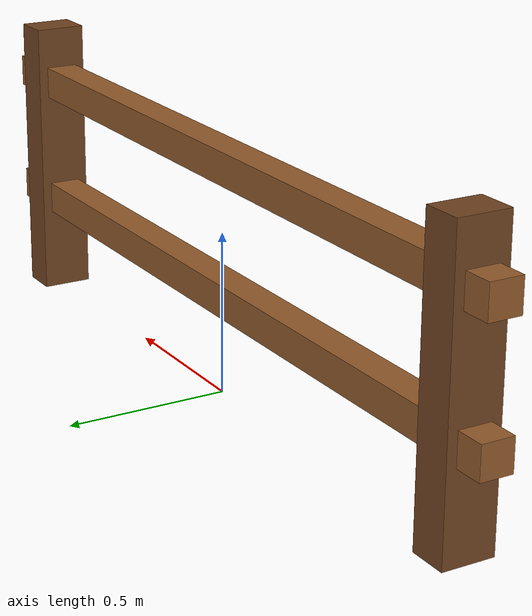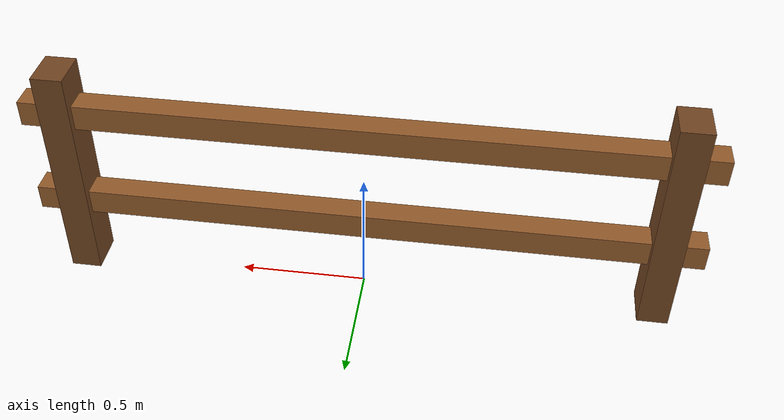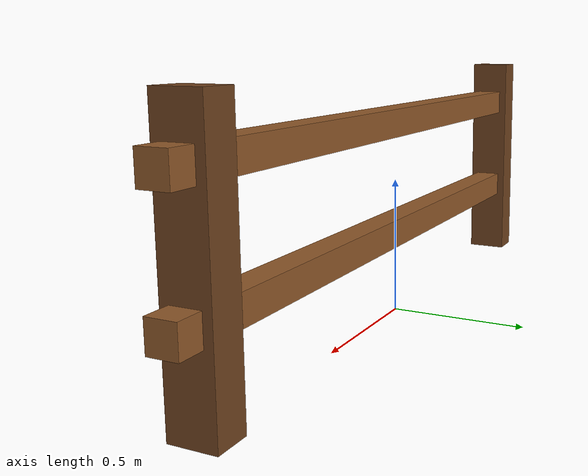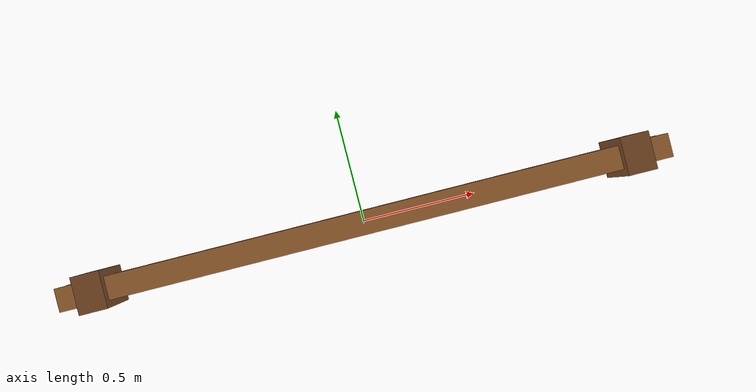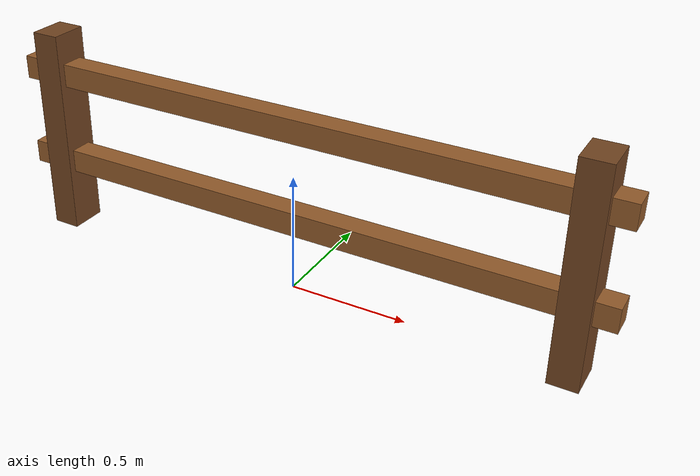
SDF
<?xml version="1.0"?>
<sdf version="1.6">
  <model name="low_fence">
    <static>true</static>
    <link name="fence">
      <pose>0 0 0 0 0 0</pose>
      <collision name="collision">
        <pose>0 0 0.45 0 0 0</pose>
        <geometry>
          <box>
            <size>2.6 0.12 0.9</size>
          </box>
        </geometry>
      </collision>
      <visual name="rail_low">
        <pose>0 0 0.32 0 0 0</pose>
        <geometry>
          <box>
            <size>2.6 0.10 0.10</size>
          </box>
        </geometry>
        <material>
          <ambient>0.45 0.28 0.13 1</ambient>
          <diffuse>0.58 0.36 0.17 1</diffuse>
        </material>
      </visual>
      <visual name="rail_high">
        <pose>0 0 0.72 0 0 0</pose>
        <geometry>
          <box>
            <size>2.6 0.10 0.10</size>
          </box>
        </geometry>
        <material>
          <ambient>0.45 0.28 0.13 1</ambient>
          <diffuse>0.58 0.36 0.17 1</diffuse>
        </material>
      </visual>
      <visual name="post_left">
        <pose>-1.15 0 0.45 0 0 0</pose>
        <geometry>
          <box>
            <size>0.12 0.16 0.9</size>
          </box>
        </geometry>
        <material>
          <ambient>0.36 0.21 0.10 1</ambient>
          <diffuse>0.45 0.27 0.13 1</diffuse>
        </material>
      </visual>
      <visual name="post_right">
        <pose>1.15 0 0.45 0 0 0</pose>
        <geometry>
          <box>
            <size>0.12 0.16 0.9</size>
          </box>
        </geometry>
        <material>
          <ambient>0.36 0.21 0.10 1</ambient>
          <diffuse>0.45 0.27 0.13 1</diffuse>
        </material>
      </visual>
    </link>
  </model>
</sdf>
